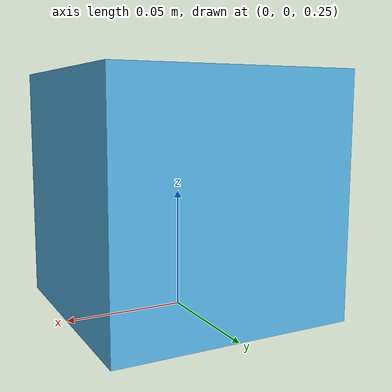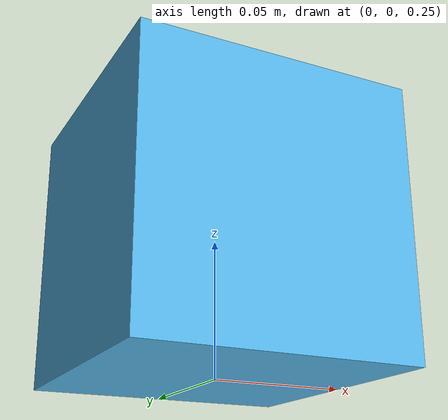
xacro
<?xml version='1.0'?>
<robot name="sensor_frame" xmlns:xacro="http://www.ros.org/wiki/xacro">
  <xacro:arg name="gpu" default="false"/>
  <xacro:property name="gpu" value="$(arg gpu)" />
  <xacro:property name="M_PI" value="3.1415926535897931" />

  <xacro:macro name="HDL-32E" params="name:=velodyne topic:=/velodyne_points hz:=10 lasers:=32 samples:=2187 collision_range:=0.3 min_range:=0.9 max_range:=130.0 noise:=0.008 min_angle:=-${M_PI} max_angle:=${M_PI} gpu:=false">
    <gazebo reference="${name}">
    <xacro:if value="${gpu}">
      <sensor type="gpu_ray" name="${name}-HDL32E">
        <pose>0 0 0 0 0 0</pose>
        <visualize>false</visualize>
        <update_rate>${hz}</update_rate>
        <ray>
          <scan>
            <horizontal>
              <samples>${samples}</samples>
              <resolution>1</resolution>
              <min_angle>${min_angle}</min_angle>
              <max_angle>${max_angle}</max_angle>
            </horizontal>
            <vertical>
              <samples>${lasers}</samples>
              <resolution>1</resolution>
              <min_angle>-${30.67*M_PI/180.0}</min_angle>
              <max_angle> ${30.67*M_PI/180.0}</max_angle>
            </vertical>
          </scan>
          <range>
            <min>${collision_range}</min>
            <max>${max_range+1}</max>
            <resolution>0.001</resolution>
          </range>
          <noise>
            <type>gaussian</type>
            <mean>0.0</mean>
            <stddev>0.0</stddev>
          </noise>
        </ray>
        <plugin name="gazebo_ros_laser_controller" filename="libgazebo_ros_velodyne_gpu_laser.so">
          <topicName>${topic}</topicName>
          <frameName>${name}</frameName>
          <min_range>${min_range}</min_range>
          <max_range>${max_range}</max_range>
          <gaussianNoise>${noise}</gaussianNoise>
        </plugin>
      </sensor>
    </xacro:if>
    <xacro:unless value="${gpu}">
      <sensor type="ray" name="${name}-HDL32E">
        <pose>0 0 0 0 0 0</pose>
        <visualize>false</visualize>
        <update_rate>${hz}</update_rate>
        <ray>
          <scan>
            <horizontal>
              <samples>${samples}</samples>
              <resolution>1</resolution>
              <min_angle>${min_angle}</min_angle>
              <max_angle>${max_angle}</max_angle>
            </horizontal>
            <vertical>
              <samples>${lasers}</samples>
              <resolution>1</resolution>
              <min_angle>-${30.67*M_PI/180.0}</min_angle>
              <max_angle> ${30.67*M_PI/180.0}</max_angle>
            </vertical>
          </scan>
          <range>
            <min>${collision_range}</min>
            <max>${max_range+1}</max>
            <resolution>0.001</resolution>
          </range>
          <noise>
            <type>gaussian</type>
            <mean>0.0</mean>
            <stddev>0.0</stddev>
          </noise>
        </ray>
        <plugin name="gazebo_ros_laser_controller" filename="libgazebo_ros_velodyne_laser.so">
          <topicName>${topic}</topicName>
          <frameName>${name}</frameName>
          <min_range>${min_range}</min_range>
          <max_range>${max_range}</max_range>
          <gaussianNoise>${noise}</gaussianNoise>
        </plugin>
      </sensor>
    </xacro:unless>
    </gazebo>
  </xacro:macro>

  <link name='base'>
    <pose>0 0 0 0 0 0</pose>
  </link>

  <link name='camera'>
    <pose>0 0 0 0 0 0</pose>
    <origin xyz="0 0 0.3" rpy="0 0 0"/>
    <inertial>
      <mass value="0.01"/>
      <origin xyz="0 0 0"/>
      <inertia ixx="1e-7" ixy="0" ixz="0" iyy="1e-7" iyz="0" izz="1e-7"/>
    </inertial>
    <visual name='camera'>
      <geometry>
        <box size="0.1 0.1 0.1"/>
      </geometry>
    </visual>
  </link>

  <joint name='camera-to-base' type='fixed'>
    <origin xyz="0 0 0.3" rpy="0 0 0"/>
    <parent link='base'/>
    <child link='camera'/>
  </joint>

  <gazebo reference="camera">
    <sensor type="camera" name="camera1">
      <update_rate>30.0</update_rate>
      <visualize>true</visualize>
      <camera name="head">
        <horizontal_fov>1.3962634</horizontal_fov>
        <image>
          <width>800</width>
          <height>800</height>
          <format>R8G8B8</format>
        </image>
        <clip>
          <near>0.2</near>
          <far>300</far>
        </clip>
      </camera>
      <plugin name="camera_controller" filename="libgazebo_ros_camera.so">
        <alwaysOn>true</alwaysOn>
        <updateRate>0.0</updateRate>
        <cameraName>camera1</cameraName>
        <imageTopicName>image_raw</imageTopicName>
        <cameraInfoTopicName>camera_info</cameraInfoTopicName>
        <frameName>camera</frameName>
        <hackBaseline>0.0</hackBaseline>
        <distortionK1>0.0</distortionK1>
        <distortionK2>0.0</distortionK2>
        <distortionK3>0.0</distortionK3>
        <distortionT1>0.0</distortionT1>
        <distortionT2>0.0</distortionT2>
      </plugin>
    </sensor>
  </gazebo>

<HDL-32E name="velodyne" topic="/velodyne_points" hz="10" samples="220" gpu="${gpu}"/>
  <link name='velodyne'>
    <pose>0 0 0 0 0 0</pose>
    <inertial>
      <mass value="0.01"/>
      <origin xyz="0 0 0"/>
      <inertia ixx="1e-7" ixy="0" ixz="0" iyy="1e-7" iyz="0" izz="1e-7"/>
    </inertial>
    <visual name='velodyne'>
      <geometry>
        <box size="0.1 0.1 0.1"/>
      </geometry>
    </visual>
  </link>

  <joint name='velodyne-to-base' type='fixed'>
    <origin xyz="0 0 0.3" rpy="0 0 0"/>
    <parent link='base'/>
    <child link='velodyne'/>
  </joint>

  <gazebo>
    <static>true</static>
  </gazebo>

</robot>
